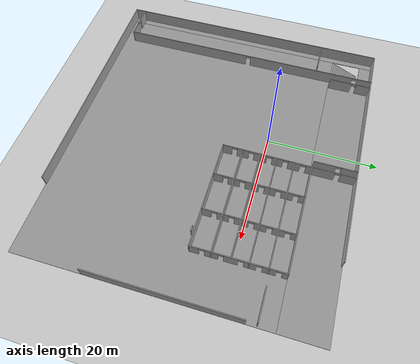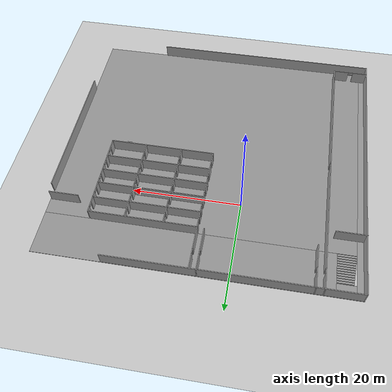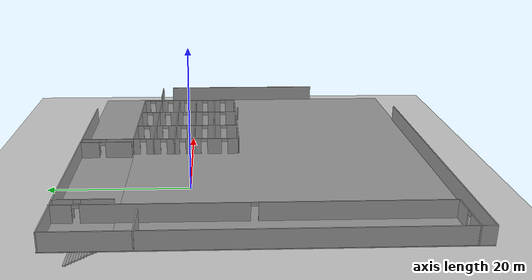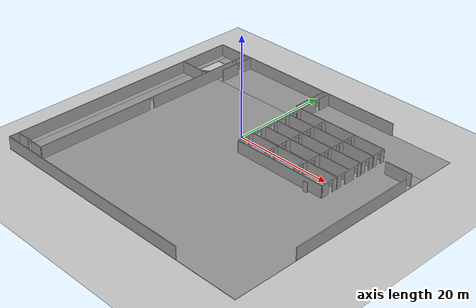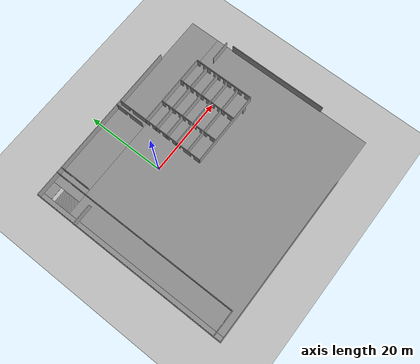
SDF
<sdf version="1.6">
 <world name="default">
  <model name="ground_plane">
   <static>1</static>
   <link name="link">
    <collision name="collision">
     <geometry><plane><normal>0 0 1</normal><size>100 100</size></plane></geometry>
     <surface>
      <contact><collide_bitmask>65535</collide_bitmask></contact>
      <friction><ode><mu>100</mu><mu2>50</mu2></ode></friction>
     </surface>
    </collision>
    <visual name="visual">
     <cast_shadows>0</cast_shadows>
     <geometry><plane><normal>0 0 1</normal><size>100 100</size></plane></geometry>
     <material>
      <script><uri>file://media/materials/scripts/gazebo.material</uri><name>Gazebo/Grey</name></script>
     </material>
    </visual>
   </link>
  </model>
  <model name="Level_2_Layout">
   <pose>5.83664 -8.91662 0.151481 0 -0 0.00315</pose>
   <link name="Door_2">
    <collision name="Door_2_Collision">
     <geometry><box><size>0.9 0.17 2</size></box></geometry>
     <pose>0 0 1 0 -0 0</pose>
    </collision>
    <visual name="Door_2_Visual">
     <pose>0 0 1 0 -0 0</pose>
     <geometry><box><size>0.9 0.17 2</size></box></geometry>
     <material>
      <script><uri>file://media/materials/scripts/gazebo.material</uri><name>Gazebo/Grey</name></script>
     </material>
    </visual>
    <pose>16.277 1.39059 2.5 0 -0 0</pose>
   </link>
   <link name="Floor_1">
    <pose>0 -0 2.5 0 -0 0</pose>
    <visual name="Floor_1_Visual_0">
     <pose>-26.6975 0 0.05 0 -0 0</pose>
     <geometry><box><size>1.28109 50.0674 0.1</size></box></geometry>
     <material>
      <script><uri>file://media/materials/scripts/gazebo.material</uri><name>Gazebo/Grey</name></script>
      <ambient>1 1 1 1</ambient>
     </material>
     <meta><layer>1</layer></meta>
    </visual>
    <collision name="Floor_1_Collision_0">
     <geometry><box><size>1.28109 50.0674 0.1</size></box></geometry>
     <pose>-26.6975 0 0.05 0 -0 0</pose>
    </collision>
    <visual name="Floor_1_Visual_1">
     <pose>0.640543 -3.83191 0.05 0 -0 0</pose>
     <geometry><box><size>53.395 42.4036 0.1</size></box></geometry>
     <material>
      <script><uri>file://media/materials/scripts/gazebo.material</uri><name>Gazebo/Grey</name></script>
      <ambient>1 1 1 1</ambient>
     </material>
     <meta><layer>1</layer></meta>
    </visual>
    <collision name="Floor_1_Collision_1">
     <geometry><box><size>53.395 42.4036 0.1</size></box></geometry>
     <pose>0.640543 -3.83191 0.05 0 -0 0</pose>
    </collision>
    <visual name="Floor_1_Visual_2">
     <pose>2.25939 21.2018 0.05 0 -0 0</pose>
     <geometry><box><size>50.1573 7.66381 0.1</size></box></geometry>
     <material>
      <script><uri>file://media/materials/scripts/gazebo.material</uri><name>Gazebo/Grey</name></script>
      <ambient>1 1 1 1</ambient>
     </material>
     <meta><layer>1</layer></meta>
    </visual>
    <collision name="Floor_1_Collision_2">
     <geometry><box><size>50.1573 7.66381 0.1</size></box></geometry>
     <pose>2.25939 21.2018 0.05 0 -0 0</pose>
    </collision>
    <visual name="Floor_1_Visual_3">
     <pose>-24.4381 23.8464 0.05 0 -0 0</pose>
     <geometry><box><size>3.23769 2.37458 0.1</size></box></geometry>
     <material>
      <script><uri>file://media/materials/scripts/gazebo.material</uri><name>Gazebo/Grey</name></script>
      <ambient>1 1 1 1</ambient>
     </material>
     <meta><layer>1</layer></meta>
    </visual>
    <collision name="Floor_1_Collision_3">
     <geometry><box><size>3.23769 2.37458 0.1</size></box></geometry>
     <pose>-24.4381 23.8464 0.05 0 -0 0</pose>
    </collision>
   </link>
   <link name="Stairs_0">
    <visual name="Stairs_0_Visual_0">
     <pose>-24.4381 22.4828 0.083333 0 -0 0</pose>
     <geometry><box><size>3.23769 0.352616 0.166667</size></box></geometry>
     <material>
      <script><uri>file://media/materials/scripts/gazebo.material</uri><name>Gazebo/Grey</name></script>
      <ambient>1 1 1 1</ambient>
     </material>
     <meta><layer>0</layer></meta>
    </visual>
    <collision name="Stairs_0_Collision_0">
     <geometry><box><size>3.23769 0.352616 0.166667</size></box></geometry>
     <pose>-24.4381 22.4828 0.083333 0 -0 0</pose>
    </collision>
    <visual name="Stairs_0_Visual_1">
     <pose>-24.4381 22.1302 0.25 0 -0 0</pose>
     <geometry><box><size>3.23769 0.352616 0.166667</size></box></geometry>
     <material>
      <script><uri>file://media/materials/scripts/gazebo.material</uri><name>Gazebo/Grey</name></script>
      <ambient>1 1 1 1</ambient>
     </material>
     <meta><layer>0</layer></meta>
    </visual>
    <collision name="Stairs_0_Collision_1">
     <geometry><box><size>3.23769 0.352616 0.166667</size></box></geometry>
     <pose>-24.4381 22.1302 0.25 0 -0 0</pose>
    </collision>
    <visual name="Stairs_0_Visual_2">
     <pose>-24.4381 21.7776 0.416667 0 -0 0</pose>
     <geometry><box><size>3.23769 0.352616 0.166667</size></box></geometry>
     <material>
      <script><uri>file://media/materials/scripts/gazebo.material</uri><name>Gazebo/Grey</name></script>
      <ambient>1 1 1 1</ambient>
     </material>
     <meta><layer>0</layer></meta>
    </visual>
    <collision name="Stairs_0_Collision_2">
     <geometry><box><size>3.23769 0.352616 0.166667</size></box></geometry>
     <pose>-24.4381 21.7776 0.416667 0 -0 0</pose>
    </collision>
    <visual name="Stairs_0_Visual_3">
     <pose>-24.4381 21.425 0.583333 0 -0 0</pose>
     <geometry><box><size>3.23769 0.352616 0.166667</size></box></geometry>
     <material>
      <script><uri>file://media/materials/scripts/gazebo.material</uri><name>Gazebo/Grey</name></script>
      <ambient>1 1 1 1</ambient>
     </material>
     <meta><layer>0</layer></meta>
    </visual>
    <collision name="Stairs_0_Collision_3">
     <geometry><box><size>3.23769 0.352616 0.166667</size></box></geometry>
     <pose>-24.4381 21.425 0.583333 0 -0 0</pose>
    </collision>
    <visual name="Stairs_0_Visual_4">
     <pose>-24.4381 21.0723 0.75 0 -0 0</pose>
     <geometry><box><size>3.23769 0.352616 0.166667</size></box></geometry>
     <material>
      <script><uri>file://media/materials/scripts/gazebo.material</uri><name>Gazebo/Grey</name></script>
      <ambient>1 1 1 1</ambient>
     </material>
     <meta><layer>0</layer></meta>
    </visual>
    <collision name="Stairs_0_Collision_4">
     <geometry><box><size>3.23769 0.352616 0.166667</size></box></geometry>
     <pose>-24.4381 21.0723 0.75 0 -0 0</pose>
    </collision>
    <visual name="Stairs_0_Visual_5">
     <pose>-24.4381 20.7197 0.916667 0 -0 0</pose>
     <geometry><box><size>3.23769 0.352616 0.166667</size></box></geometry>
     <material>
      <script><uri>file://media/materials/scripts/gazebo.material</uri><name>Gazebo/Grey</name></script>
      <ambient>1 1 1 1</ambient>
     </material>
     <meta><layer>0</layer></meta>
    </visual>
    <collision name="Stairs_0_Collision_5">
     <geometry><box><size>3.23769 0.352616 0.166667</size></box></geometry>
     <pose>-24.4381 20.7197 0.916667 0 -0 0</pose>
    </collision>
    <visual name="Stairs_0_Visual_6">
     <pose>-24.4381 20.3671 1.08333 0 -0 0</pose>
     <geometry><box><size>3.23769 0.352616 0.166667</size></box></geometry>
     <material>
      <script><uri>file://media/materials/scripts/gazebo.material</uri><name>Gazebo/Grey</name></script>
      <ambient>1 1 1 1</ambient>
     </material>
     <meta><layer>0</layer></meta>
    </visual>
    <collision name="Stairs_0_Collision_6">
     <geometry><box><size>3.23769 0.352616 0.166667</size></box></geometry>
     <pose>-24.4381 20.3671 1.08333 0 -0 0</pose>
    </collision>
    <visual name="Stairs_0_Visual_7">
     <pose>-24.4381 20.0145 1.25 0 -0 0</pose>
     <geometry><box><size>3.23769 0.352616 0.166667</size></box></geometry>
     <material>
      <script><uri>file://media/materials/scripts/gazebo.material</uri><name>Gazebo/Grey</name></script>
      <ambient>1 1 1 1</ambient>
     </material>
     <meta><layer>0</layer></meta>
    </visual>
    <collision name="Stairs_0_Collision_7">
     <geometry><box><size>3.23769 0.352616 0.166667</size></box></geometry>
     <pose>-24.4381 20.0145 1.25 0 -0 0</pose>
    </collision>
    <visual name="Stairs_0_Visual_8">
     <pose>-24.4381 19.6619 1.41667 0 -0 0</pose>
     <geometry><box><size>3.23769 0.352616 0.166667</size></box></geometry>
     <material>
      <script><uri>file://media/materials/scripts/gazebo.material</uri><name>Gazebo/Grey</name></script>
      <ambient>1 1 1 1</ambient>
     </material>
     <meta><layer>0</layer></meta>
    </visual>
    <collision name="Stairs_0_Collision_8">
     <geometry><box><size>3.23769 0.352616 0.166667</size></box></geometry>
     <pose>-24.4381 19.6619 1.41667 0 -0 0</pose>
    </collision>
    <visual name="Stairs_0_Visual_9">
     <pose>-24.4381 19.3093 1.58333 0 -0 0</pose>
     <geometry><box><size>3.23769 0.352616 0.166667</size></box></geometry>
     <material>
      <script><uri>file://media/materials/scripts/gazebo.material</uri><name>Gazebo/Grey</name></script>
      <ambient>1 1 1 1</ambient>
     </material>
     <meta><layer>0</layer></meta>
    </visual>
    <collision name="Stairs_0_Collision_9">
     <geometry><box><size>3.23769 0.352616 0.166667</size></box></geometry>
     <pose>-24.4381 19.3093 1.58333 0 -0 0</pose>
    </collision>
    <visual name="Stairs_0_Visual_10">
     <pose>-24.4381 18.9566 1.75 0 -0 0</pose>
     <geometry><box><size>3.23769 0.352616 0.166667</size></box></geometry>
     <material>
      <script><uri>file://media/materials/scripts/gazebo.material</uri><name>Gazebo/Grey</name></script>
      <ambient>1 1 1 1</ambient>
     </material>
     <meta><layer>0</layer></meta>
    </visual>
    <collision name="Stairs_0_Collision_10">
     <geometry><box><size>3.23769 0.352616 0.166667</size></box></geometry>
     <pose>-24.4381 18.9566 1.75 0 -0 0</pose>
    </collision>
    <visual name="Stairs_0_Visual_11">
     <pose>-24.4381 18.604 1.91667 0 -0 0</pose>
     <geometry><box><size>3.23769 0.352616 0.166667</size></box></geometry>
     <material>
      <script><uri>file://media/materials/scripts/gazebo.material</uri><name>Gazebo/Grey</name></script>
      <ambient>1 1 1 1</ambient>
     </material>
     <meta><layer>0</layer></meta>
    </visual>
    <collision name="Stairs_0_Collision_11">
     <geometry><box><size>3.23769 0.352616 0.166667</size></box></geometry>
     <pose>-24.4381 18.604 1.91667 0 -0 0</pose>
    </collision>
    <visual name="Stairs_0_Visual_12">
     <pose>-24.4381 18.2514 2.08333 0 -0 0</pose>
     <geometry><box><size>3.23769 0.352616 0.166667</size></box></geometry>
     <material>
      <script><uri>file://media/materials/scripts/gazebo.material</uri><name>Gazebo/Grey</name></script>
      <ambient>1 1 1 1</ambient>
     </material>
     <meta><layer>0</layer></meta>
    </visual>
    <collision name="Stairs_0_Collision_12">
     <geometry><box><size>3.23769 0.352616 0.166667</size></box></geometry>
     <pose>-24.4381 18.2514 2.08333 0 -0 0</pose>
    </collision>
    <visual name="Stairs_0_Visual_13">
     <pose>-24.4381 17.8988 2.25 0 -0 0</pose>
     <geometry><box><size>3.23769 0.352616 0.166667</size></box></geometry>
     <material>
      <script><uri>file://media/materials/scripts/gazebo.material</uri><name>Gazebo/Grey</name></script>
      <ambient>1 1 1 1</ambient>
     </material>
     <meta><layer>0</layer></meta>
    </visual>
    <collision name="Stairs_0_Collision_13">
     <geometry><box><size>3.23769 0.352616 0.166667</size></box></geometry>
     <pose>-24.4381 17.8988 2.25 0 -0 0</pose>
    </collision>
    <visual name="Stairs_0_Visual_14">
     <pose>-24.4381 17.5462 2.41667 0 -0 0</pose>
     <geometry><box><size>3.23769 0.352616 0.166667</size></box></geometry>
     <material>
      <script><uri>file://media/materials/scripts/gazebo.material</uri><name>Gazebo/Grey</name></script>
      <ambient>1 1 1 1</ambient>
     </material>
     <meta><layer>0</layer></meta>
    </visual>
    <collision name="Stairs_0_Collision_14">
     <geometry><box><size>3.23769 0.352616 0.166667</size></box></geometry>
     <pose>-24.4381 17.5462 2.41667 0 -0 0</pose>
    </collision>
   </link>
   <link name="Wall_12">
    <collision name="Wall_12_Collision">
     <geometry><box><size>50 0.15 2.5</size></box></geometry>
     <pose>0 0 1.25 0 -0 0</pose>
    </collision>
    <visual name="Wall_12_Visual">
     <pose>0 0 1.25 0 -0 0</pose>
     <geometry><box><size>50 0.15 2.5</size></box></geometry>
     <material>
      <script><uri>file://media/materials/scripts/gazebo.material</uri><name>Gazebo/Grey</name></script>
      <ambient>1 1 1 1</ambient>
     </material>
     <meta><layer>1</layer></meta>
    </visual>
    <pose>-27.2031 -0.033683 2.5 0 -0 -1.5708</pose>
   </link>
   <link name="Wall_13">
    <collision name="Wall_13_Collision">
     <geometry><box><size>42.5 0.15 2.5</size></box></geometry>
     <pose>0 0 1.25 0 -0 0</pose>
    </collision>
    <visual name="Wall_13_Visual">
     <pose>0 0 1.25 0 -0 0</pose>
     <geometry><box><size>42.5 0.15 2.5</size></box></geometry>
     <material>
      <script><uri>file://media/materials/scripts/gazebo.material</uri><name>Gazebo/Grey</name></script>
      <ambient>1 1 1 1</ambient>
     </material>
     <meta><layer>1</layer></meta>
    </visual>
    <pose>-6.02811 24.8913 2.5 0 -0 0</pose>
   </link>
   <link name="Wall_14">
    <collision name="Wall_14_Collision">
     <geometry><box><size>25.5 0.15 2.5</size></box></geometry>
     <pose>0 0 1.25 0 -0 0</pose>
    </collision>
    <visual name="Wall_14_Visual">
     <pose>0 0 1.25 0 -0 0</pose>
     <geometry><box><size>25.5 0.15 2.5</size></box></geometry>
     <material>
      <script><uri>file://media/materials/scripts/gazebo.material</uri><name>Gazebo/Grey</name></script>
      <ambient>1 1 1 1</ambient>
     </material>
     <meta><layer>1</layer></meta>
    </visual>
    <pose>27.263 0.149678 2.5 0 -0 -1.5708</pose>
   </link>
   <link name="Wall_15">
    <collision name="Wall_15_Collision">
     <geometry><box><size>42.25 0.15 2.5</size></box></geometry>
     <pose>0 0 1.25 0 -0 0</pose>
    </collision>
    <visual name="Wall_15_Visual">
     <pose>0 0 1.25 0 -0 0</pose>
     <geometry><box><size>42.25 0.15 2.5</size></box></geometry>
     <material>
      <script><uri>file://media/materials/scripts/gazebo.material</uri><name>Gazebo/Grey</name></script>
      <ambient>1 1 1 1</ambient>
     </material>
     <meta><layer>1</layer></meta>
    </visual>
    <pose>-6.15311 -24.9587 2.5 0 -0 0</pose>
   </link>
   <link name="Wall_16">
    <collision name="Wall_16_Collision">
     <geometry><box><size>5.25 0.15 2.5</size></box></geometry>
     <pose>0 0 1.25 0 -0 0</pose>
    </collision>
    <visual name="Wall_16_Visual">
     <pose>0 0 1.25 0 -0 0</pose>
     <geometry><box><size>5.25 0.15 2.5</size></box></geometry>
     <material>
      <script><uri>file://media/materials/scripts/gazebo.material</uri><name>Gazebo/Grey</name></script>
      <ambient>1 1 1 1</ambient>
     </material>
     <meta><layer>1</layer></meta>
    </visual>
    <pose>-24.713 14.558 2.5 0 -0 0</pose>
   </link>
   <link name="Wall_18">
    <collision name="Wall_18_Collision">
     <geometry><box><size>5.25 0.15 2.5</size></box></geometry>
     <pose>0 0 1.25 0 -0 0</pose>
    </collision>
    <visual name="Wall_18_Visual">
     <pose>0 0 1.25 0 -0 0</pose>
     <geometry><box><size>5.25 0.15 2.5</size></box></geometry>
     <material>
      <script><uri>file://media/materials/scripts/gazebo.material</uri><name>Gazebo/Grey</name></script>
      <ambient>1 1 1 1</ambient>
     </material>
     <meta><layer>1</layer></meta>
    </visual>
    <pose>24.4968 14.5776 2.5 0 -0 0</pose>
   </link>
   <link name="Wall_20">
    <pose>-24.0279 -23.1282 2.5 0 -0 -0.004082</pose>
    <visual name="Wall_20_Visual_0">
     <pose>-1.86605 0 1.25 0 -0 0</pose>
     <geometry><box><size>2.8616 0.15 2.5</size></box></geometry>
     <material>
      <script><uri>file://media/materials/scripts/gazebo.material</uri><name>Gazebo/Grey</name></script>
      <ambient>1 1 1 1</ambient>
     </material>
     <meta><layer>1</layer></meta>
    </visual>
    <collision name="Wall_20_Collision_0">
     <geometry><box><size>2.8616 0.15 2.5</size></box></geometry>
     <pose>-1.86605 0 1.25 0 -0 0</pose>
    </collision>
    <visual name="Wall_20_Visual_1">
     <pose>1.8808 0 1.25 0 -0 0</pose>
     <geometry><box><size>2.83211 0.15 2.5</size></box></geometry>
     <material>
      <script><uri>file://media/materials/scripts/gazebo.material</uri><name>Gazebo/Grey</name></script>
      <ambient>1 1 1 1</ambient>
     </material>
     <meta><layer>1</layer></meta>
    </visual>
    <collision name="Wall_20_Collision_1">
     <geometry><box><size>2.83211 0.15 2.5</size></box></geometry>
     <pose>1.8808 0 1.25 0 -0 0</pose>
    </collision>
    <visual name="Wall_20_Visual_2">
     <pose>0.014748 0 2.25 0 -0 0</pose>
     <geometry><box><size>0.9 0.15 0.5</size></box></geometry>
     <material>
      <script><uri>file://media/materials/scripts/gazebo.material</uri><name>Gazebo/Grey</name></script>
      <ambient>1 1 1 1</ambient>
     </material>
     <meta><layer>1</layer></meta>
    </visual>
    <collision name="Wall_20_Collision_2">
     <geometry><box><size>0.9 0.15 0.5</size></box></geometry>
     <pose>0.014748 0 2.25 0 -0 0</pose>
    </collision>
   </link>
   <link name="Wall_22">
    <pose>-20.8061 0.908682 2.5 0 -0 1.5708</pose>
    <visual name="Wall_22_Visual_0">
     <pose>-12.2267 0 1.25 0 -0 0</pose>
     <geometry><box><size>23.7966 0.15 2.5</size></box></geometry>
     <material>
      <script><uri>file://media/materials/scripts/gazebo.material</uri><name>Gazebo/Grey</name></script>
      <ambient>1 1 1 1</ambient>
     </material>
     <meta><layer>1</layer></meta>
    </visual>
    <collision name="Wall_22_Collision_0">
     <geometry><box><size>23.7966 0.15 2.5</size></box></geometry>
     <pose>-12.2267 0 1.25 0 -0 0</pose>
    </collision>
    <visual name="Wall_22_Visual_1">
     <pose>10.5329 0 1.25 0 -0 0</pose>
     <geometry><box><size>19.9226 0.15 2.5</size></box></geometry>
     <material>
      <script><uri>file://media/materials/scripts/gazebo.material</uri><name>Gazebo/Grey</name></script>
      <ambient>1 1 1 1</ambient>
     </material>
     <meta><layer>1</layer></meta>
    </visual>
    <collision name="Wall_22_Collision_1">
     <geometry><box><size>19.9226 0.15 2.5</size></box></geometry>
     <pose>10.5329 0 1.25 0 -0 0</pose>
    </collision>
    <visual name="Wall_22_Visual_2">
     <pose>22.7596 0 1.25 0 -0 0</pose>
     <geometry><box><size>2.73077 0.15 2.5</size></box></geometry>
     <material>
      <script><uri>file://media/materials/scripts/gazebo.material</uri><name>Gazebo/Grey</name></script>
      <ambient>1 1 1 1</ambient>
     </material>
     <meta><layer>1</layer></meta>
    </visual>
    <collision name="Wall_22_Collision_2">
     <geometry><box><size>2.73077 0.15 2.5</size></box></geometry>
     <pose>22.7596 0 1.25 0 -0 0</pose>
    </collision>
    <visual name="Wall_22_Visual_3">
     <pose>0.121611 0 2.25 0 -0 0</pose>
     <geometry><box><size>0.9 0.15 0.5</size></box></geometry>
     <material>
      <script><uri>file://media/materials/scripts/gazebo.material</uri><name>Gazebo/Grey</name></script>
      <ambient>1 1 1 1</ambient>
     </material>
     <meta><layer>1</layer></meta>
    </visual>
    <collision name="Wall_22_Collision_3">
     <geometry><box><size>0.9 0.15 0.5</size></box></geometry>
     <pose>0.121611 0 2.25 0 -0 0</pose>
    </collision>
    <visual name="Wall_22_Visual_4">
     <pose>20.9442 0 2.25 0 -0 0</pose>
     <geometry><box><size>0.9 0.15 0.5</size></box></geometry>
     <material>
      <script><uri>file://media/materials/scripts/gazebo.material</uri><name>Gazebo/Grey</name></script>
      <ambient>1 1 1 1</ambient>
     </material>
     <meta><layer>1</layer></meta>
    </visual>
    <collision name="Wall_22_Collision_4">
     <geometry><box><size>0.9 0.15 0.5</size></box></geometry>
     <pose>20.9442 0 2.25 0 -0 0</pose>
    </collision>
   </link>
   <link name="Wall_24">
    <pose>-19.406 21.2429 2.5 0 -0 -1.5708</pose>
    <visual name="Wall_24_Visual_0">
     <pose>-2.42961 0 1.25 0 -0 0</pose>
     <geometry><box><size>2.64078 0.15 2.5</size></box></geometry>
     <material>
      <script><uri>file://media/materials/scripts/gazebo.material</uri><name>Gazebo/Grey</name></script>
      <ambient>1 1 1 1</ambient>
     </material>
     <meta><layer>1</layer></meta>
    </visual>
    <collision name="Wall_24_Collision_0">
     <geometry><box><size>2.64078 0.15 2.5</size></box></geometry>
     <pose>-2.42961 0 1.25 0 -0 0</pose>
    </collision>
    <visual name="Wall_24_Visual_1">
     <pose>1.77039 0 1.25 0 -0 0</pose>
     <geometry><box><size>3.95922 0.15 2.5</size></box></geometry>
     <material>
      <script><uri>file://media/materials/scripts/gazebo.material</uri><name>Gazebo/Grey</name></script>
      <ambient>1 1 1 1</ambient>
     </material>
     <meta><layer>1</layer></meta>
    </visual>
    <collision name="Wall_24_Collision_1">
     <geometry><box><size>3.95922 0.15 2.5</size></box></geometry>
     <pose>1.77039 0 1.25 0 -0 0</pose>
    </collision>
    <visual name="Wall_24_Visual_2">
     <pose>-0.659224 0 2.25 0 -0 0</pose>
     <geometry><box><size>0.9 0.15 0.5</size></box></geometry>
     <material>
      <script><uri>file://media/materials/scripts/gazebo.material</uri><name>Gazebo/Grey</name></script>
      <ambient>1 1 1 1</ambient>
     </material>
     <meta><layer>1</layer></meta>
    </visual>
    <collision name="Wall_24_Collision_2">
     <geometry><box><size>0.9 0.15 0.5</size></box></geometry>
     <pose>-0.659224 0 2.25 0 -0 0</pose>
    </collision>
   </link>
   <link name="Wall_26">
    <pose>-0.645168 21.2546 2.5 0 -0 -1.5708</pose>
    <visual name="Wall_26_Visual_0">
     <pose>-2.35879 0 1.25 0 -0 0</pose>
     <geometry><box><size>2.78242 0.15 2.5</size></box></geometry>
     <material>
      <script><uri>file://media/materials/scripts/gazebo.material</uri><name>Gazebo/Grey</name></script>
      <ambient>1 1 1 1</ambient>
     </material>
     <meta><layer>1</layer></meta>
    </visual>
    <collision name="Wall_26_Collision_0">
     <geometry><box><size>2.78242 0.15 2.5</size></box></geometry>
     <pose>-2.35879 0 1.25 0 -0 0</pose>
    </collision>
    <visual name="Wall_26_Visual_1">
     <pose>1.84121 0 1.25 0 -0 0</pose>
     <geometry><box><size>3.81758 0.15 2.5</size></box></geometry>
     <material>
      <script><uri>file://media/materials/scripts/gazebo.material</uri><name>Gazebo/Grey</name></script>
      <ambient>1 1 1 1</ambient>
     </material>
     <meta><layer>1</layer></meta>
    </visual>
    <collision name="Wall_26_Collision_1">
     <geometry><box><size>3.81758 0.15 2.5</size></box></geometry>
     <pose>1.84121 0 1.25 0 -0 0</pose>
    </collision>
    <visual name="Wall_26_Visual_2">
     <pose>-0.517576 0 2.25 0 -0 0</pose>
     <geometry><box><size>0.9 0.15 0.5</size></box></geometry>
     <material>
      <script><uri>file://media/materials/scripts/gazebo.material</uri><name>Gazebo/Grey</name></script>
      <ambient>1 1 1 1</ambient>
     </material>
     <meta><layer>1</layer></meta>
    </visual>
    <collision name="Wall_26_Collision_2">
     <geometry><box><size>0.9 0.15 0.5</size></box></geometry>
     <pose>-0.517576 0 2.25 0 -0 0</pose>
    </collision>
   </link>
   <link name="Wall_28">
    <pose>0.553483 21.1961 2.5 0 -0 -1.5708</pose>
    <visual name="Wall_28_Visual_0">
     <pose>-2.40264 0 1.25 0 -0 0</pose>
     <geometry><box><size>2.69472 0.15 2.5</size></box></geometry>
     <material>
      <script><uri>file://media/materials/scripts/gazebo.material</uri><name>Gazebo/Grey</name></script>
      <ambient>1 1 1 1</ambient>
     </material>
     <meta><layer>1</layer></meta>
    </visual>
    <collision name="Wall_28_Collision_0">
     <geometry><box><size>2.69472 0.15 2.5</size></box></geometry>
     <pose>-2.40264 0 1.25 0 -0 0</pose>
    </collision>
    <visual name="Wall_28_Visual_1">
     <pose>1.79736 0 1.25 0 -0 0</pose>
     <geometry><box><size>3.90528 0.15 2.5</size></box></geometry>
     <material>
      <script><uri>file://media/materials/scripts/gazebo.material</uri><name>Gazebo/Grey</name></script>
      <ambient>1 1 1 1</ambient>
     </material>
     <meta><layer>1</layer></meta>
    </visual>
    <collision name="Wall_28_Collision_1">
     <geometry><box><size>3.90528 0.15 2.5</size></box></geometry>
     <pose>1.79736 0 1.25 0 -0 0</pose>
    </collision>
    <visual name="Wall_28_Visual_2">
     <pose>-0.605282 0 2.25 0 -0 0</pose>
     <geometry><box><size>0.9 0.15 0.5</size></box></geometry>
     <material>
      <script><uri>file://media/materials/scripts/gazebo.material</uri><name>Gazebo/Grey</name></script>
      <ambient>1 1 1 1</ambient>
     </material>
     <meta><layer>1</layer></meta>
    </visual>
    <collision name="Wall_28_Collision_2">
     <geometry><box><size>0.9 0.15 0.5</size></box></geometry>
     <pose>-0.605282 0 2.25 0 -0 0</pose>
    </collision>
   </link>
   <static>1</static>
  </model>
  <model name="5x3_Cubicles_0">
   <pose>15.7042 0.74649 2.63141 0 -0 0</pose>
   <link name="Wall_0">
    <pose>-9.39351 -0 0 0 -0 -1.57435</pose>
    <visual name="Wall_0_Visual_0">
     <pose>-7.27295 0 1.25 0 -0 0</pose>
     <geometry><box><size>1.03181 0.15 2.5</size></box></geometry>
     <material>
      <script><uri>file://media/materials/scripts/gazebo.material</uri><name>Gazebo/Grey</name></script>
      <ambient>1 1 1 1</ambient>
     </material>
     <meta><layer>0</layer></meta>
    </visual>
    <collision name="Wall_0_Collision_0">
     <geometry><box><size>1.03181 0.15 2.5</size></box></geometry>
     <pose>-7.27295 0 1.25 0 -0 0</pose>
    </collision>
    <visual name="Wall_0_Visual_1">
     <pose>-4.8086 0 1.25 0 -0 0</pose>
     <geometry><box><size>2.09689 0.15 2.5</size></box></geometry>
     <material>
      <script><uri>file://media/materials/scripts/gazebo.material</uri><name>Gazebo/Grey</name></script>
      <ambient>1 1 1 1</ambient>
     </material>
     <meta><layer>0</layer></meta>
    </visual>
    <collision name="Wall_0_Collision_1">
     <geometry><box><size>2.09689 0.15 2.5</size></box></geometry>
     <pose>-4.8086 0 1.25 0 -0 0</pose>
    </collision>
    <visual name="Wall_0_Visual_2">
     <pose>-1.91379 0 1.25 0 -0 0</pose>
     <geometry><box><size>1.89272 0.15 2.5</size></box></geometry>
     <material>
      <script><uri>file://media/materials/scripts/gazebo.material</uri><name>Gazebo/Grey</name></script>
      <ambient>1 1 1 1</ambient>
     </material>
     <meta><layer>0</layer></meta>
    </visual>
    <collision name="Wall_0_Collision_2">
     <geometry><box><size>1.89272 0.15 2.5</size></box></geometry>
     <pose>-1.91379 0 1.25 0 -0 0</pose>
    </collision>
    <visual name="Wall_0_Visual_3">
     <pose>1.06918 0 1.25 0 -0 0</pose>
     <geometry><box><size>2.27323 0.15 2.5</size></box></geometry>
     <material>
      <script><uri>file://media/materials/scripts/gazebo.material</uri><name>Gazebo/Grey</name></script>
      <ambient>1 1 1 1</ambient>
     </material>
     <meta><layer>0</layer></meta>
    </visual>
    <collision name="Wall_0_Collision_3">
     <geometry><box><size>2.27323 0.15 2.5</size></box></geometry>
     <pose>1.06918 0 1.25 0 -0 0</pose>
    </collision>
    <visual name="Wall_0_Visual_4">
     <pose>4.14705 0 1.25 0 -0 0</pose>
     <geometry><box><size>2.0825 0.15 2.5</size></box></geometry>
     <material>
      <script><uri>file://media/materials/scripts/gazebo.material</uri><name>Gazebo/Grey</name></script>
      <ambient>1 1 1 1</ambient>
     </material>
     <meta><layer>0</layer></meta>
    </visual>
    <collision name="Wall_0_Collision_4">
     <geometry><box><size>2.0825 0.15 2.5</size></box></geometry>
     <pose>4.14705 0 1.25 0 -0 0</pose>
    </collision>
    <visual name="Wall_0_Visual_5">
     <pose>6.93858 0 1.25 0 -0 0</pose>
     <geometry><box><size>1.70057 0.15 2.5</size></box></geometry>
     <material>
      <script><uri>file://media/materials/scripts/gazebo.material</uri><name>Gazebo/Grey</name></script>
      <ambient>1 1 1 1</ambient>
     </material>
     <meta><layer>0</layer></meta>
    </visual>
    <collision name="Wall_0_Collision_5">
     <geometry><box><size>1.70057 0.15 2.5</size></box></geometry>
     <pose>6.93858 0 1.25 0 -0 0</pose>
    </collision>
    <visual name="Wall_0_Visual_6">
     <pose>-6.30705 0 2.25 0 -0 0</pose>
     <geometry><box><size>0.9 0.15 0.5</size></box></geometry>
     <material>
      <script><uri>file://media/materials/scripts/gazebo.material</uri><name>Gazebo/Grey</name></script>
      <ambient>1 1 1 1</ambient>
     </material>
     <meta><layer>0</layer></meta>
    </visual>
    <collision name="Wall_0_Collision_6">
     <geometry><box><size>0.9 0.15 0.5</size></box></geometry>
     <pose>-6.30705 0 2.25 0 -0 0</pose>
    </collision>
    <visual name="Wall_0_Visual_7">
     <pose>-3.31016 0 2.25 0 -0 0</pose>
     <geometry><box><size>0.9 0.15 0.5</size></box></geometry>
     <material>
      <script><uri>file://media/materials/scripts/gazebo.material</uri><name>Gazebo/Grey</name></script>
      <ambient>1 1 1 1</ambient>
     </material>
     <meta><layer>0</layer></meta>
    </visual>
    <collision name="Wall_0_Collision_7">
     <geometry><box><size>0.9 0.15 0.5</size></box></geometry>
     <pose>-3.31016 0 2.25 0 -0 0</pose>
    </collision>
    <visual name="Wall_0_Visual_8">
     <pose>-0.517433 0 2.25 0 -0 0</pose>
     <geometry><box><size>0.9 0.15 0.5</size></box></geometry>
     <material>
      <script><uri>file://media/materials/scripts/gazebo.material</uri><name>Gazebo/Grey</name></script>
      <ambient>1 1 1 1</ambient>
     </material>
     <meta><layer>0</layer></meta>
    </visual>
    <collision name="Wall_0_Collision_8">
     <geometry><box><size>0.9 0.15 0.5</size></box></geometry>
     <pose>-0.517433 0 2.25 0 -0 0</pose>
    </collision>
    <visual name="Wall_0_Visual_9">
     <pose>2.6558 0 2.25 0 -0 0</pose>
     <geometry><box><size>0.9 0.15 0.5</size></box></geometry>
     <material>
      <script><uri>file://media/materials/scripts/gazebo.material</uri><name>Gazebo/Grey</name></script>
      <ambient>1 1 1 1</ambient>
     </material>
     <meta><layer>0</layer></meta>
    </visual>
    <collision name="Wall_0_Collision_9">
     <geometry><box><size>0.9 0.15 0.5</size></box></geometry>
     <pose>2.6558 0 2.25 0 -0 0</pose>
    </collision>
    <visual name="Wall_0_Visual_10">
     <pose>5.63829 0 2.25 0 -0 0</pose>
     <geometry><box><size>0.9 0.15 0.5</size></box></geometry>
     <material>
      <script><uri>file://media/materials/scripts/gazebo.material</uri><name>Gazebo/Grey</name></script>
      <ambient>1 1 1 1</ambient>
     </material>
     <meta><layer>0</layer></meta>
    </visual>
    <collision name="Wall_0_Collision_10">
     <geometry><box><size>0.9 0.15 0.5</size></box></geometry>
     <pose>5.63829 0 2.25 0 -0 0</pose>
    </collision>
   </link>
   <link name="Wall_10">
    <collision name="Wall_10_Collision">
     <geometry><box><size>19 0.15 2.5</size></box></geometry>
     <pose>0 0 1.25 0 -0 0</pose>
    </collision>
    <visual name="Wall_10_Visual">
     <pose>0 0 1.25 0 -0 0</pose>
     <geometry><box><size>19 0.15 2.5</size></box></geometry>
     <material>
      <script><uri>file://media/materials/scripts/gazebo.material</uri><name>Gazebo/Grey</name></script>
      <ambient>1 1 1 1</ambient>
     </material>
     <meta><layer>0</layer></meta>
    </visual>
    <pose>-0 1.73972 0 0 -0 0</pose>
   </link>
   <link name="Wall_12">
    <collision name="Wall_12_Collision">
     <geometry><box><size>19 0.15 2.5</size></box></geometry>
     <pose>0 0 1.25 0 -0 0</pose>
    </collision>
    <visual name="Wall_12_Visual">
     <pose>0 0 1.25 0 -0 0</pose>
     <geometry><box><size>19 0.15 2.5</size></box></geometry>
     <material>
      <script><uri>file://media/materials/scripts/gazebo.material</uri><name>Gazebo/Grey</name></script>
      <ambient>1 1 1 1</ambient>
     </material>
     <meta><layer>0</layer></meta>
    </visual>
    <pose>0.002757 4.78648 0 0 -0 0</pose>
   </link>
   <link name="Wall_14">
    <pose>3.03244 -0.038205 0 0 -0 -1.57332</pose>
    <visual name="Wall_14_Visual_0">
     <pose>-7.27661 0 1.25 0 -0 0</pose>
     <geometry><box><size>0.887786 0.15 2.5</size></box></geometry>
     <material>
      <script><uri>file://media/materials/scripts/gazebo.material</uri><name>Gazebo/Grey</name></script>
      <ambient>1 1 1 1</ambient>
     </material>
     <meta><layer>0</layer></meta>
    </visual>
    <collision name="Wall_14_Collision_0">
     <geometry><box><size>0.887786 0.15 2.5</size></box></geometry>
     <pose>-7.27661 0 1.25 0 -0 0</pose>
    </collision>
    <visual name="Wall_14_Visual_1">
     <pose>-4.91212 0 1.25 0 -0 0</pose>
     <geometry><box><size>2.04118 0.15 2.5</size></box></geometry>
     <material>
      <script><uri>file://media/materials/scripts/gazebo.material</uri><name>Gazebo/Grey</name></script>
      <ambient>1 1 1 1</ambient>
     </material>
     <meta><layer>0</layer></meta>
    </visual>
    <collision name="Wall_14_Collision_1">
     <geometry><box><size>2.04118 0.15 2.5</size></box></geometry>
     <pose>-4.91212 0 1.25 0 -0 0</pose>
    </collision>
    <visual name="Wall_14_Visual_2">
     <pose>-1.97726 0 1.25 0 -0 0</pose>
     <geometry><box><size>2.02854 0.15 2.5</size></box></geometry>
     <material>
      <script><uri>file://media/materials/scripts/gazebo.material</uri><name>Gazebo/Grey</name></script>
      <ambient>1 1 1 1</ambient>
     </material>
     <meta><layer>0</layer></meta>
    </visual>
    <collision name="Wall_14_Collision_2">
     <geometry><box><size>2.02854 0.15 2.5</size></box></geometry>
     <pose>-1.97726 0 1.25 0 -0 0</pose>
    </collision>
    <visual name="Wall_14_Visual_3">
     <pose>1.09454 0 1.25 0 -0 0</pose>
     <geometry><box><size>2.31505 0.15 2.5</size></box></geometry>
     <material>
      <script><uri>file://media/materials/scripts/gazebo.material</uri><name>Gazebo/Grey</name></script>
      <ambient>1 1 1 1</ambient>
     </material>
     <meta><layer>0</layer></meta>
    </visual>
    <collision name="Wall_14_Collision_3">
     <geometry><box><size>2.31505 0.15 2.5</size></box></geometry>
     <pose>1.09454 0 1.25 0 -0 0</pose>
    </collision>
    <visual name="Wall_14_Visual_4">
     <pose>4.15071 0 1.25 0 -0 0</pose>
     <geometry><box><size>1.9973 0.15 2.5</size></box></geometry>
     <material>
      <script><uri>file://media/materials/scripts/gazebo.material</uri><name>Gazebo/Grey</name></script>
      <ambient>1 1 1 1</ambient>
     </material>
     <meta><layer>0</layer></meta>
    </visual>
    <collision name="Wall_14_Collision_4">
     <geometry><box><size>1.9973 0.15 2.5</size></box></geometry>
     <pose>4.15071 0 1.25 0 -0 0</pose>
    </collision>
    <visual name="Wall_14_Visual_5">
     <pose>6.88493 0 1.25 0 -0 0</pose>
     <geometry><box><size>1.67114 0.15 2.5</size></box></geometry>
     <material>
      <script><uri>file://media/materials/scripts/gazebo.material</uri><name>Gazebo/Grey</name></script>
      <ambient>1 1 1 1</ambient>
     </material>
     <meta><layer>0</layer></meta>
    </visual>
    <collision name="Wall_14_Collision_5">
     <geometry><box><size>1.67114 0.15 2.5</size></box></geometry>
     <pose>6.88493 0 1.25 0 -0 0</pose>
    </collision>
    <visual name="Wall_14_Visual_6">
     <pose>-6.38271 0 2.25 0 -0 0</pose>
     <geometry><box><size>0.9 0.15 0.5</size></box></geometry>
     <material>
      <script><uri>file://media/materials/scripts/gazebo.material</uri><name>Gazebo/Grey</name></script>
      <ambient>1 1 1 1</ambient>
     </material>
     <meta><layer>0</layer></meta>
    </visual>
    <collision name="Wall_14_Collision_6">
     <geometry><box><size>0.9 0.15 0.5</size></box></geometry>
     <pose>-6.38271 0 2.25 0 -0 0</pose>
    </collision>
    <visual name="Wall_14_Visual_7">
     <pose>-3.44153 0 2.25 0 -0 0</pose>
     <geometry><box><size>0.9 0.15 0.5</size></box></geometry>
     <material>
      <script><uri>file://media/materials/scripts/gazebo.material</uri><name>Gazebo/Grey</name></script>
      <ambient>1 1 1 1</ambient>
     </material>
     <meta><layer>0</layer></meta>
    </visual>
    <collision name="Wall_14_Collision_7">
     <geometry><box><size>0.9 0.15 0.5</size></box></geometry>
     <pose>-3.44153 0 2.25 0 -0 0</pose>
    </collision>
    <visual name="Wall_14_Visual_8">
     <pose>-0.512986 0 2.25 0 -0 0</pose>
     <geometry><box><size>0.9 0.15 0.5</size></box></geometry>
     <material>
      <script><uri>file://media/materials/scripts/gazebo.material</uri><name>Gazebo/Grey</name></script>
      <ambient>1 1 1 1</ambient>
     </material>
     <meta><layer>0</layer></meta>
    </visual>
    <collision name="Wall_14_Collision_8">
     <geometry><box><size>0.9 0.15 0.5</size></box></geometry>
     <pose>-0.512986 0 2.25 0 -0 0</pose>
    </collision>
    <visual name="Wall_14_Visual_9">
     <pose>2.70206 0 2.25 0 -0 0</pose>
     <geometry><box><size>0.9 0.15 0.5</size></box></geometry>
     <material>
      <script><uri>file://media/materials/scripts/gazebo.material</uri><name>Gazebo/Grey</name></script>
      <ambient>1 1 1 1</ambient>
     </material>
     <meta><layer>0</layer></meta>
    </visual>
    <collision name="Wall_14_Collision_9">
     <geometry><box><size>0.9 0.15 0.5</size></box></geometry>
     <pose>2.70206 0 2.25 0 -0 0</pose>
    </collision>
    <visual name="Wall_14_Visual_10">
     <pose>5.59936 0 2.25 0 -0 0</pose>
     <geometry><box><size>0.9 0.15 0.5</size></box></geometry>
     <material>
      <script><uri>file://media/materials/scripts/gazebo.material</uri><name>Gazebo/Grey</name></script>
      <ambient>1 1 1 1</ambient>
     </material>
     <meta><layer>0</layer></meta>
    </visual>
    <collision name="Wall_14_Collision_10">
     <geometry><box><size>0.9 0.15 0.5</size></box></geometry>
     <pose>5.59936 0 2.25 0 -0 0</pose>
    </collision>
   </link>
   <link name="Wall_16">
    <pose>-3.57321 -0.011645 0 0 -0 -1.5708</pose>
    <visual name="Wall_16_Visual_0">
     <pose>-7.25015 0 1.25 0 -0 0</pose>
     <geometry><box><size>0.999697 0.15 2.5</size></box></geometry>
     <material>
      <script><uri>file://media/materials/scripts/gazebo.material</uri><name>Gazebo/Grey</name></script>
      <ambient>1 1 1 1</ambient>
     </material>
     <meta><layer>0</layer></meta>
    </visual>
    <collision name="Wall_16_Collision_0">
     <geometry><box><size>0.999697 0.15 2.5</size></box></geometry>
     <pose>-7.25015 0 1.25 0 -0 0</pose>
    </collision>
    <visual name="Wall_16_Visual_1">
     <pose>-4.84832 0 1.25 0 -0 0</pose>
     <geometry><box><size>2.00397 0.15 2.5</size></box></geometry>
     <material>
      <script><uri>file://media/materials/scripts/gazebo.material</uri><name>Gazebo/Grey</name></script>
      <ambient>1 1 1 1</ambient>
     </material>
     <meta><layer>0</layer></meta>
    </visual>
    <collision name="Wall_16_Collision_1">
     <geometry><box><size>2.00397 0.15 2.5</size></box></geometry>
     <pose>-4.84832 0 1.25 0 -0 0</pose>
    </collision>
    <visual name="Wall_16_Visual_2">
     <pose>-1.97337 0 1.25 0 -0 0</pose>
     <geometry><box><size>1.94594 0.15 2.5</size></box></geometry>
     <material>
      <script><uri>file://media/materials/scripts/gazebo.material</uri><name>Gazebo/Grey</name></script>
      <ambient>1 1 1 1</ambient>
     </material>
     <meta><layer>0</layer></meta>
    </visual>
    <collision name="Wall_16_Collision_2">
     <geometry><box><size>1.94594 0.15 2.5</size></box></geometry>
     <pose>-1.97337 0 1.25 0 -0 0</pose>
    </collision>
    <visual name="Wall_16_Visual_3">
     <pose>1.06765 0 1.25 0 -0 0</pose>
     <geometry><box><size>2.3361 0.15 2.5</size></box></geometry>
     <material>
      <script><uri>file://media/materials/scripts/gazebo.material</uri><name>Gazebo/Grey</name></script>
      <ambient>1 1 1 1</ambient>
     </material>
     <meta><layer>0</layer></meta>
    </visual>
    <collision name="Wall_16_Collision_3">
     <geometry><box><size>2.3361 0.15 2.5</size></box></geometry>
     <pose>1.06765 0 1.25 0 -0 0</pose>
    </collision>
    <visual name="Wall_16_Visual_4">
     <pose>4.14512 0 1.25 0 -0 0</pose>
     <geometry><box><size>2.01884 0.15 2.5</size></box></geometry>
     <material>
      <script><uri>file://media/materials/scripts/gazebo.material</uri><name>Gazebo/Grey</name></script>
      <ambient>1 1 1 1</ambient>
     </material>
     <meta><layer>0</layer></meta>
    </visual>
    <collision name="Wall_16_Collision_4">
     <geometry><box><size>2.01884 0.15 2.5</size></box></geometry>
     <pose>4.14512 0 1.25 0 -0 0</pose>
    </collision>
    <visual name="Wall_16_Visual_5">
     <pose>6.90227 0 1.25 0 -0 0</pose>
     <geometry><box><size>1.69546 0.15 2.5</size></box></geometry>
     <material>
      <script><uri>file://media/materials/scripts/gazebo.material</uri><name>Gazebo/Grey</name></script>
      <ambient>1 1 1 1</ambient>
     </material>
     <meta><layer>0</layer></meta>
    </visual>
    <collision name="Wall_16_Collision_5">
     <geometry><box><size>1.69546 0.15 2.5</size></box></geometry>
     <pose>6.90227 0 1.25 0 -0 0</pose>
    </collision>
    <visual name="Wall_16_Visual_6">
     <pose>-6.3003 0 2.25 0 -0 0</pose>
     <geometry><box><size>0.9 0.15 0.5</size></box></geometry>
     <material>
      <script><uri>file://media/materials/scripts/gazebo.material</uri><name>Gazebo/Grey</name></script>
      <ambient>1 1 1 1</ambient>
     </material>
     <meta><layer>0</layer></meta>
    </visual>
    <collision name="Wall_16_Collision_6">
     <geometry><box><size>0.9 0.15 0.5</size></box></geometry>
     <pose>-6.3003 0 2.25 0 -0 0</pose>
    </collision>
    <visual name="Wall_16_Visual_7">
     <pose>-3.39634 0 2.25 0 -0 0</pose>
     <geometry><box><size>0.9 0.15 0.5</size></box></geometry>
     <material>
      <script><uri>file://media/materials/scripts/gazebo.material</uri><name>Gazebo/Grey</name></script>
      <ambient>1 1 1 1</ambient>
     </material>
     <meta><layer>0</layer></meta>
    </visual>
    <collision name="Wall_16_Collision_7">
     <geometry><box><size>0.9 0.15 0.5</size></box></geometry>
     <pose>-3.39634 0 2.25 0 -0 0</pose>
    </collision>
    <visual name="Wall_16_Visual_8">
     <pose>-0.5504 0 2.25 0 -0 0</pose>
     <geometry><box><size>0.9 0.15 0.5</size></box></geometry>
     <material>
      <script><uri>file://media/materials/scripts/gazebo.material</uri><name>Gazebo/Grey</name></script>
      <ambient>1 1 1 1</ambient>
     </material>
     <meta><layer>0</layer></meta>
    </visual>
    <collision name="Wall_16_Collision_8">
     <geometry><box><size>0.9 0.15 0.5</size></box></geometry>
     <pose>-0.5504 0 2.25 0 -0 0</pose>
    </collision>
    <visual name="Wall_16_Visual_9">
     <pose>2.6857 0 2.25 0 -0 0</pose>
     <geometry><box><size>0.9 0.15 0.5</size></box></geometry>
     <material>
      <script><uri>file://media/materials/scripts/gazebo.material</uri><name>Gazebo/Grey</name></script>
      <ambient>1 1 1 1</ambient>
     </material>
     <meta><layer>0</layer></meta>
    </visual>
    <collision name="Wall_16_Collision_9">
     <geometry><box><size>0.9 0.15 0.5</size></box></geometry>
     <pose>2.6857 0 2.25 0 -0 0</pose>
    </collision>
    <visual name="Wall_16_Visual_10">
     <pose>5.60454 0 2.25 0 -0 0</pose>
     <geometry><box><size>0.9 0.15 0.5</size></box></geometry>
     <material>
      <script><uri>file://media/materials/scripts/gazebo.material</uri><name>Gazebo/Grey</name></script>
      <ambient>1 1 1 1</ambient>
     </material>
     <meta><layer>0</layer></meta>
    </visual>
    <collision name="Wall_16_Collision_10">
     <geometry><box><size>0.9 0.15 0.5</size></box></geometry>
     <pose>5.60454 0 2.25 0 -0 0</pose>
    </collision>
   </link>
   <link name="Wall_2">
    <collision name="Wall_2_Collision">
     <geometry><box><size>19 0.15 2.5</size></box></geometry>
     <pose>0 0 1.25 0 -0 0</pose>
    </collision>
    <visual name="Wall_2_Visual">
     <pose>0 0 1.25 0 -0 0</pose>
     <geometry><box><size>19 0.15 2.5</size></box></geometry>
     <material>
      <script><uri>file://media/materials/scripts/gazebo.material</uri><name>Gazebo/Grey</name></script>
      <ambient>1 1 1 1</ambient>
     </material>
     <meta><layer>0</layer></meta>
    </visual>
    <pose>0.004043 -7.71378 0 0 -0 0</pose>
   </link>
   <link name="Wall_3">
    <pose>9.40486 -0.007207 0 0 -0 1.57394</pose>
    <visual name="Wall_3_Visual_0">
     <pose>-6.96276 0 1.25 0 -0 0</pose>
     <geometry><box><size>1.63776 0.15 2.5</size></box></geometry>
     <material>
      <script><uri>file://media/materials/scripts/gazebo.material</uri><name>Gazebo/Grey</name></script>
      <ambient>1 1 1 1</ambient>
     </material>
     <meta><layer>0</layer></meta>
    </visual>
    <collision name="Wall_3_Collision_0">
     <geometry><box><size>1.63776 0.15 2.5</size></box></geometry>
     <pose>-6.96276 0 1.25 0 -0 0</pose>
    </collision>
    <visual name="Wall_3_Visual_1">
     <pose>-4.17068 0 1.25 0 -0 0</pose>
     <geometry><box><size>2.14639 0.15 2.5</size></box></geometry>
     <material>
      <script><uri>file://media/materials/scripts/gazebo.material</uri><name>Gazebo/Grey</name></script>
      <ambient>1 1 1 1</ambient>
     </material>
     <meta><layer>0</layer></meta>
    </visual>
    <collision name="Wall_3_Collision_1">
     <geometry><box><size>2.14639 0.15 2.5</size></box></geometry>
     <pose>-4.17068 0 1.25 0 -0 0</pose>
    </collision>
    <visual name="Wall_3_Visual_2">
     <pose>-1.08256 0 1.25 0 -0 0</pose>
     <geometry><box><size>2.22987 0.15 2.5</size></box></geometry>
     <material>
      <script><uri>file://media/materials/scripts/gazebo.material</uri><name>Gazebo/Grey</name></script>
      <ambient>1 1 1 1</ambient>
     </material>
     <meta><layer>0</layer></meta>
    </visual>
    <collision name="Wall_3_Collision_2">
     <geometry><box><size>2.22987 0.15 2.5</size></box></geometry>
     <pose>-1.08256 0 1.25 0 -0 0</pose>
    </collision>
    <visual name="Wall_3_Visual_3">
     <pose>1.90922 0 1.25 0 -0 0</pose>
     <geometry><box><size>1.95369 0.15 2.5</size></box></geometry>
     <material>
      <script><uri>file://media/materials/scripts/gazebo.material</uri><name>Gazebo/Grey</name></script>
      <ambient>1 1 1 1</ambient>
     </material>
     <meta><layer>0</layer></meta>
    </visual>
    <collision name="Wall_3_Collision_3">
     <geometry><box><size>1.95369 0.15 2.5</size></box></geometry>
     <pose>1.90922 0 1.25 0 -0 0</pose>
    </collision>
    <visual name="Wall_3_Visual_4">
     <pose>4.85258 0 1.25 0 -0 0</pose>
     <geometry><box><size>2.13302 0.15 2.5</size></box></geometry>
     <material>
      <script><uri>file://media/materials/scripts/gazebo.material</uri><name>Gazebo/Grey</name></script>
      <ambient>1 1 1 1</ambient>
     </material>
     <meta><layer>0</layer></meta>
    </visual>
    <collision name="Wall_3_Collision_4">
     <geometry><box><size>2.13302 0.15 2.5</size></box></geometry>
     <pose>4.85258 0 1.25 0 -0 0</pose>
    </collision>
    <visual name="Wall_3_Visual_5">
     <pose>7.30037 0 1.25 0 -0 0</pose>
     <geometry><box><size>0.962557 0.15 2.5</size></box></geometry>
     <material>
      <script><uri>file://media/materials/scripts/gazebo.material</uri><name>Gazebo/Grey</name></script>
      <ambient>1 1 1 1</ambient>
     </material>
     <meta><layer>0</layer></meta>
    </visual>
    <collision name="Wall_3_Collision_5">
     <geometry><box><size>0.962557 0.15 2.5</size></box></geometry>
     <pose>7.30037 0 1.25 0 -0 0</pose>
    </collision>
    <visual name="Wall_3_Visual_6">
     <pose>-5.69388 0 2.25 0 -0 0</pose>
     <geometry><box><size>0.9 0.15 0.5</size></box></geometry>
     <material>
      <script><uri>file://media/materials/scripts/gazebo.material</uri><name>Gazebo/Grey</name></script>
      <ambient>1 1 1 1</ambient>
     </material>
     <meta><layer>0</layer></meta>
    </visual>
    <collision name="Wall_3_Collision_6">
     <geometry><box><size>0.9 0.15 0.5</size></box></geometry>
     <pose>-5.69388 0 2.25 0 -0 0</pose>
    </collision>
    <visual name="Wall_3_Visual_7">
     <pose>-2.64749 0 2.25 0 -0 0</pose>
     <geometry><box><size>0.9 0.15 0.5</size></box></geometry>
     <material>
      <script><uri>file://media/materials/scripts/gazebo.material</uri><name>Gazebo/Grey</name></script>
      <ambient>1 1 1 1</ambient>
     </material>
     <meta><layer>0</layer></meta>
    </visual>
    <collision name="Wall_3_Collision_7">
     <geometry><box><size>0.9 0.15 0.5</size></box></geometry>
     <pose>-2.64749 0 2.25 0 -0 0</pose>
    </collision>
    <visual name="Wall_3_Visual_8">
     <pose>0.482376 0 2.25 0 -0 0</pose>
     <geometry><box><size>0.9 0.15 0.5</size></box></geometry>
     <material>
      <script><uri>file://media/materials/scripts/gazebo.material</uri><name>Gazebo/Grey</name></script>
      <ambient>1 1 1 1</ambient>
     </material>
     <meta><layer>0</layer></meta>
    </visual>
    <collision name="Wall_3_Collision_8">
     <geometry><box><size>0.9 0.15 0.5</size></box></geometry>
     <pose>0.482376 0 2.25 0 -0 0</pose>
    </collision>
    <visual name="Wall_3_Visual_9">
     <pose>3.33607 0 2.25 0 -0 0</pose>
     <geometry><box><size>0.9 0.15 0.5</size></box></geometry>
     <material>
      <script><uri>file://media/materials/scripts/gazebo.material</uri><name>Gazebo/Grey</name></script>
      <ambient>1 1 1 1</ambient>
     </material>
     <meta><layer>0</layer></meta>
    </visual>
    <collision name="Wall_3_Collision_9">
     <geometry><box><size>0.9 0.15 0.5</size></box></geometry>
     <pose>3.33607 0 2.25 0 -0 0</pose>
    </collision>
    <visual name="Wall_3_Visual_10">
     <pose>6.36909 0 2.25 0 -0 0</pose>
     <geometry><box><size>0.9 0.15 0.5</size></box></geometry>
     <material>
      <script><uri>file://media/materials/scripts/gazebo.material</uri><name>Gazebo/Grey</name></script>
      <ambient>1 1 1 1</ambient>
     </material>
     <meta><layer>0</layer></meta>
    </visual>
    <collision name="Wall_3_Collision_10">
     <geometry><box><size>0.9 0.15 0.5</size></box></geometry>
     <pose>6.36909 0 2.25 0 -0 0</pose>
    </collision>
   </link>
   <link name="Wall_4">
    <collision name="Wall_4_Collision">
     <geometry><box><size>18.8967 0.15 2.5</size></box></geometry>
     <pose>0 0 1.25 0 -0 0</pose>
    </collision>
    <visual name="Wall_4_Visual">
     <pose>0 0 1.25 0 -0 0</pose>
     <geometry><box><size>18.8967 0.15 2.5</size></box></geometry>
     <material>
      <script><uri>file://media/materials/scripts/gazebo.material</uri><name>Gazebo/Grey</name></script>
      <ambient>1 1 1 1</ambient>
     </material>
     <meta><layer>0</layer></meta>
    </visual>
    <pose>0.0073 7.70657 0 0 -0 3.14082</pose>
   </link>
   <link name="Wall_6">
    <collision name="Wall_6_Collision">
     <geometry><box><size>19 0.15 2.5</size></box></geometry>
     <pose>0 0 1.25 0 -0 0</pose>
    </collision>
    <visual name="Wall_6_Visual">
     <pose>0 0 1.25 0 -0 0</pose>
     <geometry><box><size>19 0.15 2.5</size></box></geometry>
     <material>
      <script><uri>file://media/materials/scripts/gazebo.material</uri><name>Gazebo/Grey</name></script>
      <ambient>1 1 1 1</ambient>
     </material>
     <meta><layer>0</layer></meta>
    </visual>
    <pose>0.024186 -4.2101 0 0 -0 0</pose>
   </link>
   <link name="Wall_8">
    <collision name="Wall_8_Collision">
     <geometry><box><size>19 0.15 2.5</size></box></geometry>
     <pose>0 0 1.25 0 -0 0</pose>
    </collision>
    <visual name="Wall_8_Visual">
     <pose>0 0 1.25 0 -0 0</pose>
     <geometry><box><size>19 0.15 2.5</size></box></geometry>
     <material>
      <script><uri>file://media/materials/scripts/gazebo.material</uri><name>Gazebo/Grey</name></script>
      <ambient>1 1 1 1</ambient>
     </material>
     <meta><layer>0</layer></meta>
    </visual>
    <pose>-0.024187 -1.11426 0 0 -0 0</pose>
   </link>
   <static>1</static>
  </model>
 </world>
</sdf>
